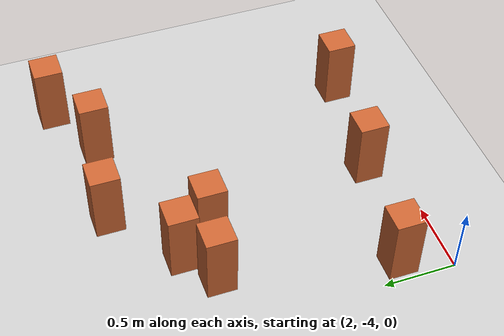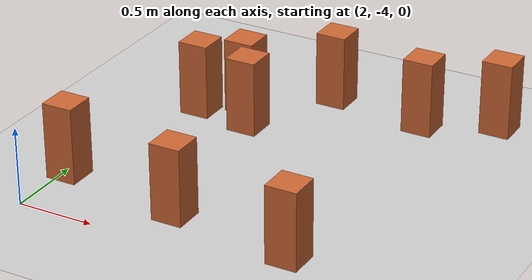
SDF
<sdf version="1.9">
 <world name="default">
  <model name="ground_plane">
   <static>true</static>
   <link name="link">
    <collision name="collision">
     <geometry><plane><normal>0 0 1</normal><size>100 100</size></plane></geometry>
     <surface><friction><ode><mu>100</mu><mu2>50</mu2></ode></friction></surface>
    </collision>
    <visual name="visual">
     <cast_shadows>false</cast_shadows>
     <geometry><plane><normal>0 0 1</normal><size>100 100</size></plane></geometry>
     <material>
      <ambient>0.6 0.6 0.6 1</ambient>
      <diffuse>0.8 0.8 0.8 1</diffuse>
      <specular>0.1 0.1 0.1 1</specular>
     </material>
    </visual>
    <inertial>
     <mass>1</mass>
     <inertia><ixx>1</ixx><ixy>0</ixy><ixz>0</ixz><iyy>1</iyy><iyz>0</iyz><izz>1</izz></inertia>
    </inertial>
   </link>
  </model>
  <model name="wood_cube_10cm_clone_0_clone_4_27">
   <link name="link">
    <pose>0 0 0.05 0 -0 0</pose>
    <inertial>
     <mass>0.51670000000000005</mass>
     <inertia>
      <ixx>0.00086116700000000003</ixx>
      <ixy>0</ixy>
      <ixz>0</ixz>
      <iyy>0.00086116700000000003</iyy>
      <iyz>0</iyz>
      <izz>0.00086116700000000003</izz>
     </inertia>
    </inertial>
    <collision name="collision">
     <geometry><box><size>0.2 0.2 0.5</size></box></geometry>
     <surface>
      <contact>
       <poissons_ratio>0.34699999999999998</poissons_ratio>
       <elastic_modulus>8800000000</elastic_modulus>
       <ode><kp>100000</kp><kd>100</kd><max_vel>100</max_vel><min_depth>0.001</min_depth></ode>
      </contact>
      <friction>
       <torsional>
        <coefficient>1</coefficient>
        <use_patch_radius>false</use_patch_radius>
        <surface_radius>0.01</surface_radius>
       </torsional>
      </friction>
     </surface>
    </collision>
    <visual name="visual">
     <geometry><box><size>0.2 0.2 0.5</size></box></geometry>
     <material>
      <ambient>0.6 0.3 0.1 1</ambient>
      <diffuse>0.8 0.4 0.2 1</diffuse>
      <specular>0.1 0.1 0.1 1</specular>
     </material>
    </visual>
   </link>
   <pose>4.15055 -1.82456 0.249999 -0 0 0</pose>
   <static>false</static>
  </model>
  <model name="wood_cube_10cm_clone_0_clone_4_28">
   <link name="link">
    <pose>0 0 0.05 0 -0 0</pose>
    <inertial>
     <mass>0.51670000000000005</mass>
     <inertia>
      <ixx>0.00086116700000000003</ixx>
      <ixy>0</ixy>
      <ixz>0</ixz>
      <iyy>0.00086116700000000003</iyy>
      <iyz>0</iyz>
      <izz>0.00086116700000000003</izz>
     </inertia>
    </inertial>
    <collision name="collision">
     <geometry><box><size>0.2 0.2 0.5</size></box></geometry>
     <surface>
      <contact>
       <poissons_ratio>0.34699999999999998</poissons_ratio>
       <elastic_modulus>8800000000</elastic_modulus>
       <ode><kp>100000</kp><kd>100</kd><max_vel>100</max_vel><min_depth>0.001</min_depth></ode>
      </contact>
      <friction>
       <torsional>
        <coefficient>1</coefficient>
        <use_patch_radius>false</use_patch_radius>
        <surface_radius>0.01</surface_radius>
       </torsional>
      </friction>
     </surface>
    </collision>
    <visual name="visual">
     <geometry><box><size>0.2 0.2 0.5</size></box></geometry>
     <material>
      <ambient>0.6 0.3 0.1 1</ambient>
      <diffuse>0.8 0.4 0.2 1</diffuse>
      <specular>0.1 0.1 0.1 1</specular>
     </material>
    </visual>
   </link>
   <pose>3.70849 -2.03851 0.249999 -0 -0 0</pose>
   <static>false</static>
  </model>
  <model name="wood_cube_10cm_clone_0_clone_4_29">
   <link name="link">
    <pose>0 0 0.05 0 -0 0</pose>
    <inertial>
     <mass>0.51670000000000005</mass>
     <inertia>
      <ixx>0.00086116700000000003</ixx>
      <ixy>0</ixy>
      <ixz>0</ixz>
      <iyy>0.00086116700000000003</iyy>
      <iyz>0</iyz>
      <izz>0.00086116700000000003</izz>
     </inertia>
    </inertial>
    <collision name="collision">
     <geometry><box><size>0.2 0.2 0.5</size></box></geometry>
     <surface>
      <contact>
       <poissons_ratio>0.34699999999999998</poissons_ratio>
       <elastic_modulus>8800000000</elastic_modulus>
       <ode><kp>100000</kp><kd>100</kd><max_vel>100</max_vel><min_depth>0.001</min_depth></ode>
      </contact>
      <friction>
       <torsional>
        <coefficient>1</coefficient>
        <use_patch_radius>false</use_patch_radius>
        <surface_radius>0.01</surface_radius>
       </torsional>
      </friction>
     </surface>
    </collision>
    <visual name="visual">
     <geometry><box><size>0.2 0.2 0.5</size></box></geometry>
     <material>
      <ambient>0.6 0.3 0.1 1</ambient>
      <diffuse>0.8 0.4 0.2 1</diffuse>
      <specular>0.1 0.1 0.1 1</specular>
     </material>
    </visual>
   </link>
   <pose>3.05427 -1.95075 0.249999 0 0 0</pose>
   <static>false</static>
  </model>
  <model name="wood_cube_10cm_clone_0_clone_4_35">
   <link name="link">
    <pose>0 0 0.05 0 -0 0</pose>
    <inertial>
     <mass>0.51670000000000005</mass>
     <inertia>
      <ixx>0.00086116700000000003</ixx>
      <ixy>0</ixy>
      <ixz>0</ixz>
      <iyy>0.00086116700000000003</iyy>
      <iyz>0</iyz>
      <izz>0.00086116700000000003</izz>
     </inertia>
    </inertial>
    <collision name="collision">
     <geometry><box><size>0.2 0.2 0.5</size></box></geometry>
     <surface>
      <contact>
       <poissons_ratio>0.34699999999999998</poissons_ratio>
       <elastic_modulus>8800000000</elastic_modulus>
       <ode><kp>100000</kp><kd>100</kd><max_vel>100</max_vel><min_depth>0.001</min_depth></ode>
      </contact>
      <friction>
       <torsional>
        <coefficient>1</coefficient>
        <use_patch_radius>false</use_patch_radius>
        <surface_radius>0.01</surface_radius>
       </torsional>
      </friction>
     </surface>
    </collision>
    <visual name="visual">
     <geometry><box><size>0.2 0.2 0.5</size></box></geometry>
     <material>
      <ambient>0.6 0.3 0.1 1</ambient>
      <diffuse>0.8 0.4 0.2 1</diffuse>
      <specular>0.1 0.1 0.1 1</specular>
     </material>
    </visual>
   </link>
   <pose>2.73515 -2.55767 0.249999 -0 -0 0</pose>
   <static>false</static>
  </model>
  <model name="wood_cube_10cm_clone_0_clone_4_36">
   <link name="link">
    <pose>0 0 0.05 0 -0 0</pose>
    <inertial>
     <mass>0.51670000000000005</mass>
     <inertia>
      <ixx>0.00086116700000000003</ixx>
      <ixy>0</ixy>
      <ixz>0</ixz>
      <iyy>0.00086116700000000003</iyy>
      <iyz>0</iyz>
      <izz>0.00086116700000000003</izz>
     </inertia>
    </inertial>
    <collision name="collision">
     <geometry><box><size>0.2 0.2 0.5</size></box></geometry>
     <surface>
      <contact>
       <poissons_ratio>0.34699999999999998</poissons_ratio>
       <elastic_modulus>8800000000</elastic_modulus>
       <ode><kp>100000</kp><kd>100</kd><max_vel>100</max_vel><min_depth>0.001</min_depth></ode>
      </contact>
      <friction>
       <torsional>
        <coefficient>1</coefficient>
        <use_patch_radius>false</use_patch_radius>
        <surface_radius>0.01</surface_radius>
       </torsional>
      </friction>
     </surface>
    </collision>
    <visual name="visual">
     <geometry><box><size>0.2 0.2 0.5</size></box></geometry>
     <material>
      <ambient>0.6 0.3 0.1 1</ambient>
      <diffuse>0.8 0.4 0.2 1</diffuse>
      <specular>0.1 0.1 0.1 1</specular>
     </material>
    </visual>
   </link>
   <pose>2.58534 -2.32212 0.249999 -0 -0 0</pose>
   <static>false</static>
  </model>
  <model name="wood_cube_10cm_clone_0_clone_4_37">
   <link name="link">
    <pose>0 0 0.05 0 -0 0</pose>
    <inertial>
     <mass>0.51670000000000005</mass>
     <inertia>
      <ixx>0.00086116700000000003</ixx>
      <ixy>0</ixy>
      <ixz>0</ixz>
      <iyy>0.00086116700000000003</iyy>
      <iyz>0</iyz>
      <izz>0.00086116700000000003</izz>
     </inertia>
    </inertial>
    <collision name="collision">
     <geometry><box><size>0.2 0.2 0.5</size></box></geometry>
     <surface>
      <contact>
       <poissons_ratio>0.34699999999999998</poissons_ratio>
       <elastic_modulus>8800000000</elastic_modulus>
       <ode><kp>100000</kp><kd>100</kd><max_vel>100</max_vel><min_depth>0.001</min_depth></ode>
      </contact>
      <friction>
       <torsional>
        <coefficient>1</coefficient>
        <use_patch_radius>false</use_patch_radius>
        <surface_radius>0.01</surface_radius>
       </torsional>
      </friction>
     </surface>
    </collision>
    <visual name="visual">
     <geometry><box><size>0.2 0.2 0.5</size></box></geometry>
     <material>
      <ambient>0.6 0.3 0.1 1</ambient>
      <diffuse>0.8 0.4 0.2 1</diffuse>
      <specular>0.1 0.1 0.1 1</specular>
     </material>
    </visual>
   </link>
   <pose>2.34874 -2.48867 0.249999 -0 -0 0</pose>
   <static>false</static>
  </model>
  <model name="wood_cube_10cm_clone_0_clone_4_44_40">
   <link name="link">
    <pose>0 0 0.05 0 -0 0</pose>
    <inertial>
     <mass>0.51670000000000005</mass>
     <inertia>
      <ixx>0.00086116700000000003</ixx>
      <ixy>0</ixy>
      <ixz>0</ixz>
      <iyy>0.00086116700000000003</iyy>
      <iyz>0</iyz>
      <izz>0.00086116700000000003</izz>
     </inertia>
    </inertial>
    <collision name="collision">
     <geometry><box><size>0.2 0.2 0.5</size></box></geometry>
     <surface>
      <contact>
       <poissons_ratio>0.34699999999999998</poissons_ratio>
       <elastic_modulus>8800000000</elastic_modulus>
       <ode><kp>100000</kp><kd>100</kd><max_vel>100</max_vel><min_depth>0.001</min_depth></ode>
      </contact>
      <friction>
       <torsional>
        <coefficient>1</coefficient>
        <use_patch_radius>false</use_patch_radius>
        <surface_radius>0.01</surface_radius>
       </torsional>
      </friction>
     </surface>
    </collision>
    <visual name="visual">
     <geometry><box><size>0.2 0.2 0.5</size></box></geometry>
     <material>
      <ambient>0.6 0.3 0.1 1</ambient>
      <diffuse>0.8 0.4 0.2 1</diffuse>
      <specular>0.1 0.1 0.1 1</specular>
     </material>
    </visual>
   </link>
   <pose>3.74462 -3.86599 0.249999 0 0 0</pose>
   <static>false</static>
  </model>
  <model name="wood_cube_10cm_clone_0_clone_4_44_41">
   <link name="link">
    <pose>0 0 0.05 0 -0 0</pose>
    <inertial>
     <mass>0.51670000000000005</mass>
     <inertia>
      <ixx>0.00086116700000000003</ixx>
      <ixy>0</ixy>
      <ixz>0</ixz>
      <iyy>0.00086116700000000003</iyy>
      <iyz>0</iyz>
      <izz>0.00086116700000000003</izz>
     </inertia>
    </inertial>
    <collision name="collision">
     <geometry><box><size>0.2 0.2 0.5</size></box></geometry>
     <surface>
      <contact>
       <poissons_ratio>0.34699999999999998</poissons_ratio>
       <elastic_modulus>8800000000</elastic_modulus>
       <ode><kp>100000</kp><kd>100</kd><max_vel>100</max_vel><min_depth>0.001</min_depth></ode>
      </contact>
      <friction>
       <torsional>
        <coefficient>1</coefficient>
        <use_patch_radius>false</use_patch_radius>
        <surface_radius>0.01</surface_radius>
       </torsional>
      </friction>
     </surface>
    </collision>
    <visual name="visual">
     <geometry><box><size>0.2 0.2 0.5</size></box></geometry>
     <material>
      <ambient>0.6 0.3 0.1 1</ambient>
      <diffuse>0.8 0.4 0.2 1</diffuse>
      <specular>0.1 0.1 0.1 1</specular>
     </material>
    </visual>
   </link>
   <pose>2.92844 -3.75569 0.249999 0 0 0</pose>
   <static>false</static>
  </model>
  <model name="wood_cube_10cm_clone_0_clone_4_44_42">
   <link name="link">
    <pose>0 0 0.05 0 -0 0</pose>
    <inertial>
     <mass>0.51670000000000005</mass>
     <inertia>
      <ixx>0.00086116700000000003</ixx>
      <ixy>0</ixy>
      <ixz>0</ixz>
      <iyy>0.00086116700000000003</iyy>
      <iyz>0</iyz>
      <izz>0.00086116700000000003</izz>
     </inertia>
    </inertial>
    <collision name="collision">
     <geometry><box><size>0.2 0.2 0.5</size></box></geometry>
     <surface>
      <contact>
       <poissons_ratio>0.34699999999999998</poissons_ratio>
       <elastic_modulus>8800000000</elastic_modulus>
       <ode><kp>100000</kp><kd>100</kd><max_vel>100</max_vel><min_depth>0.001</min_depth></ode>
      </contact>
      <friction>
       <torsional>
        <coefficient>1</coefficient>
        <use_patch_radius>false</use_patch_radius>
        <surface_radius>0.01</surface_radius>
       </torsional>
      </friction>
     </surface>
    </collision>
    <visual name="visual">
     <geometry><box><size>0.2 0.2 0.5</size></box></geometry>
     <material>
      <ambient>0.6 0.3 0.1 1</ambient>
      <diffuse>0.8 0.4 0.2 1</diffuse>
      <specular>0.1 0.1 0.1 1</specular>
     </material>
    </visual>
   </link>
   <pose>2.10195 -3.62851 0.249999 0 0 0</pose>
   <static>false</static>
  </model>
 </world>
</sdf>
